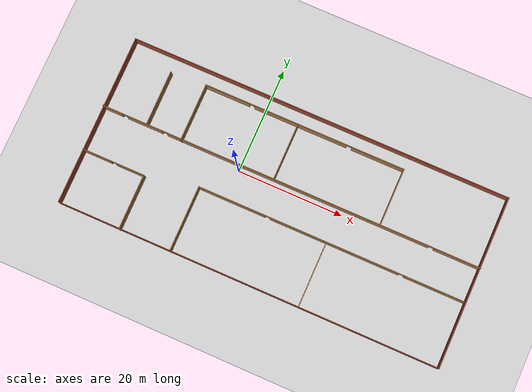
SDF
<sdf version="1.7">
 <world name="default">
  <light name="sun" type="directional">
   <pose>0 0 10 0 -0 0</pose>
   <diffuse>0.8 0.8 0.8 1</diffuse>
   <specular>0.2 0.2 0.2 1</specular>
   <attenuation>
    <range>1000</range>
    <constant>0.9</constant>
    <linear>0.01</linear>
    <quadratic>0.001</quadratic>
   </attenuation>
   <direction>-0.5 0.1 -0.9</direction>
   <spot><inner_angle>0</inner_angle><outer_angle>0</outer_angle><falloff>0</falloff></spot>
  </light>
  <model name="ground_plane">
   <static>1</static>
   <link name="link">
    <collision name="collision">
     <geometry><plane><normal>0 0 1</normal><size>100 100</size></plane></geometry>
     <surface>
      <contact><collide_bitmask>65535</collide_bitmask></contact>
      <friction><ode><mu>100</mu><mu2>50</mu2></ode></friction>
     </surface>
    </collision>
    <visual name="visual">
     <cast_shadows>0</cast_shadows>
     <geometry><plane><normal>0 0 1</normal><size>100 100</size></plane></geometry>
     <material>
      <script><uri>file://media/materials/scripts/gazebo.material</uri><name>Gazebo/Grey</name></script>
     </material>
    </visual>
   </link>
  </model>
  <gravity>0 0 -9.8</gravity>
  <magnetic_field>6e-06 2.3e-05 -4.2e-05</magnetic_field>
  <atmosphere type="adiabatic"/>
  <physics type="ode">
   <max_step_size>0.001</max_step_size>
   <real_time_factor>1</real_time_factor>
   <real_time_update_rate>1000</real_time_update_rate>
  </physics>
  <scene><ambient>0.4 0.4 0.4 1</ambient><background>0.7 0.7 0.7 1</background><shadows>1</shadows></scene>
  <spherical_coordinates>
   <surface_model>EARTH_WGS84</surface_model>
   <latitude_deg>0</latitude_deg>
   <longitude_deg>0</longitude_deg>
   <elevation>0</elevation>
   <heading_deg>0</heading_deg>
  </spherical_coordinates>
  <model name="perfect2.world">
   <pose>9.56653 -1.84375 0 0 -0 0</pose>
   <link name="Wall_10">
    <collision name="Wall_10_Collision">
     <geometry><box><size>12.5 0.15 2.5</size></box></geometry>
     <pose>0 0 1.25 0 -0 0</pose>
    </collision>
    <visual name="Wall_10_Visual">
     <pose>0 0 1.25 0 -0 0</pose>
     <geometry><box><size>12.5 0.15 2.5</size></box></geometry>
     <material>
      <script><uri>file://media/materials/scripts/gazebo.material</uri><name>Gazebo/Wood</name></script>
      <ambient>1 1 1 1</ambient>
     </material>
     <meta><layer>0</layer></meta>
    </visual>
    <pose>-14.6187 -9.99234 0 0 -0 1.5708</pose>
   </link>
   <link name="Wall_11">
    <pose>10.6813 -3.81734 0 0 -0 0</pose>
    <visual name="Wall_11_Visual_0">
     <pose>-18.9545 0 1.25 0 -0 0</pose>
     <geometry><box><size>12.8411 0.15 2.5</size></box></geometry>
     <material>
      <script><uri>file://media/materials/scripts/gazebo.material</uri><name>Gazebo/Wood</name></script>
      <ambient>1 1 1 1</ambient>
     </material>
     <meta><layer>0</layer></meta>
    </visual>
    <collision name="Wall_11_Collision_0">
     <geometry><box><size>12.8411 0.15 2.5</size></box></geometry>
     <pose>-18.9545 0 1.25 0 -0 0</pose>
    </collision>
    <visual name="Wall_11_Visual_1">
     <pose>0.721136 0 1.25 0 -0 0</pose>
     <geometry><box><size>24.7101 0.15 2.5</size></box></geometry>
     <material>
      <script><uri>file://media/materials/scripts/gazebo.material</uri><name>Gazebo/Wood</name></script>
      <ambient>1 1 1 1</ambient>
     </material>
     <meta><layer>0</layer></meta>
    </visual>
    <collision name="Wall_11_Collision_1">
     <geometry><box><size>24.7101 0.15 2.5</size></box></geometry>
     <pose>0.721136 0 1.25 0 -0 0</pose>
    </collision>
    <visual name="Wall_11_Visual_2">
     <pose>19.6756 0 1.25 0 -0 0</pose>
     <geometry><box><size>11.3988 0.15 2.5</size></box></geometry>
     <material>
      <script><uri>file://media/materials/scripts/gazebo.material</uri><name>Gazebo/Wood</name></script>
      <ambient>1 1 1 1</ambient>
     </material>
     <meta><layer>0</layer></meta>
    </visual>
    <collision name="Wall_11_Collision_2">
     <geometry><box><size>11.3988 0.15 2.5</size></box></geometry>
     <pose>19.6756 0 1.25 0 -0 0</pose>
    </collision>
    <visual name="Wall_11_Visual_3">
     <pose>-12.0839 0 2.25 0 -0 0</pose>
     <geometry><box><size>0.9 0.15 0.5</size></box></geometry>
     <material>
      <script><uri>file://media/materials/scripts/gazebo.material</uri><name>Gazebo/Wood</name></script>
      <ambient>1 1 1 1</ambient>
     </material>
     <meta><layer>0</layer></meta>
    </visual>
    <collision name="Wall_11_Collision_3">
     <geometry><box><size>0.9 0.15 0.5</size></box></geometry>
     <pose>-12.0839 0 2.25 0 -0 0</pose>
    </collision>
    <visual name="Wall_11_Visual_4">
     <pose>13.5262 0 2.25 0 -0 0</pose>
     <geometry><box><size>0.9 0.15 0.5</size></box></geometry>
     <material>
      <script><uri>file://media/materials/scripts/gazebo.material</uri><name>Gazebo/Wood</name></script>
      <ambient>1 1 1 1</ambient>
     </material>
     <meta><layer>0</layer></meta>
    </visual>
    <collision name="Wall_11_Collision_4">
     <geometry><box><size>0.9 0.15 0.5</size></box></geometry>
     <pose>13.5262 0 2.25 0 -0 0</pose>
    </collision>
   </link>
   <link name="Wall_15">
    <collision name="Wall_15_Collision">
     <geometry><box><size>12.25 0.15 2.5</size></box></geometry>
     <pose>0 0 1.25 0 -0 0</pose>
    </collision>
    <visual name="Wall_15_Visual">
     <pose>0 0 1.25 0 -0 0</pose>
     <geometry><box><size>12.25 0.15 2.5</size></box></geometry>
     <material>
      <script><uri>file://media/materials/scripts/gazebo.material</uri><name>Gazebo/Wood</name></script>
      <ambient>1 1 1 1</ambient>
     </material>
     <meta><layer>0</layer></meta>
    </visual>
    <pose>9.85454 -9.99968 0 0 -0 1.5708</pose>
   </link>
   <link name="Wall_18">
    <pose>-1e-06 2.73577 0 0 -0 0</pose>
    <visual name="Wall_18_Visual_0">
     <pose>-34.4518 0 1.25 0 -0 0</pose>
     <geometry><box><size>3.84645 0.15 2.5</size></box></geometry>
     <material>
      <script><uri>file://media/materials/scripts/gazebo.material</uri><name>Gazebo/Wood</name></script>
      <ambient>1 1 1 1</ambient>
     </material>
     <meta><layer>0</layer></meta>
    </visual>
    <collision name="Wall_18_Collision_0">
     <geometry><box><size>3.84645 0.15 2.5</size></box></geometry>
     <pose>-34.4518 0 1.25 0 -0 0</pose>
    </collision>
    <visual name="Wall_18_Visual_1">
     <pose>-28.1737 0 1.25 0 -0 0</pose>
     <geometry><box><size>6.90969 0.15 2.5</size></box></geometry>
     <material>
      <script><uri>file://media/materials/scripts/gazebo.material</uri><name>Gazebo/Wood</name></script>
      <ambient>1 1 1 1</ambient>
     </material>
     <meta><layer>0</layer></meta>
    </visual>
    <collision name="Wall_18_Collision_1">
     <geometry><box><size>6.90969 0.15 2.5</size></box></geometry>
     <pose>-28.1737 0 1.25 0 -0 0</pose>
    </collision>
    <visual name="Wall_18_Visual_2">
     <pose>1.44681 0 1.25 0 -0 0</pose>
     <geometry><box><size>50.5314 0.15 2.5</size></box></geometry>
     <material>
      <script><uri>file://media/materials/scripts/gazebo.material</uri><name>Gazebo/Wood</name></script>
      <ambient>1 1 1 1</ambient>
     </material>
     <meta><layer>0</layer></meta>
    </visual>
    <collision name="Wall_18_Collision_2">
     <geometry><box><size>50.5314 0.15 2.5</size></box></geometry>
     <pose>1.44681 0 1.25 0 -0 0</pose>
    </collision>
    <visual name="Wall_18_Visual_3">
     <pose>31.9937 0 1.25 0 -0 0</pose>
     <geometry><box><size>8.76251 0.15 2.5</size></box></geometry>
     <material>
      <script><uri>file://media/materials/scripts/gazebo.material</uri><name>Gazebo/Wood</name></script>
      <ambient>1 1 1 1</ambient>
     </material>
     <meta><layer>0</layer></meta>
    </visual>
    <collision name="Wall_18_Collision_3">
     <geometry><box><size>8.76251 0.15 2.5</size></box></geometry>
     <pose>31.9937 0 1.25 0 -0 0</pose>
    </collision>
    <visual name="Wall_18_Visual_4">
     <pose>-32.0785 0 2.25 0 -0 0</pose>
     <geometry><box><size>0.9 0.15 0.5</size></box></geometry>
     <material>
      <script><uri>file://media/materials/scripts/gazebo.material</uri><name>Gazebo/Wood</name></script>
      <ambient>1 1 1 1</ambient>
     </material>
     <meta><layer>0</layer></meta>
    </visual>
    <collision name="Wall_18_Collision_4">
     <geometry><box><size>0.9 0.15 0.5</size></box></geometry>
     <pose>-32.0785 0 2.25 0 -0 0</pose>
    </collision>
    <visual name="Wall_18_Visual_5">
     <pose>-24.2689 0 2.25 0 -0 0</pose>
     <geometry><box><size>0.9 0.15 0.5</size></box></geometry>
     <material>
      <script><uri>file://media/materials/scripts/gazebo.material</uri><name>Gazebo/Wood</name></script>
      <ambient>1 1 1 1</ambient>
     </material>
     <meta><layer>0</layer></meta>
    </visual>
    <collision name="Wall_18_Collision_5">
     <geometry><box><size>0.9 0.15 0.5</size></box></geometry>
     <pose>-24.2689 0 2.25 0 -0 0</pose>
    </collision>
    <visual name="Wall_18_Visual_6">
     <pose>27.1625 0 2.25 0 -0 0</pose>
     <geometry><box><size>0.9 0.15 0.5</size></box></geometry>
     <material>
      <script><uri>file://media/materials/scripts/gazebo.material</uri><name>Gazebo/Wood</name></script>
      <ambient>1 1 1 1</ambient>
     </material>
     <meta><layer>0</layer></meta>
    </visual>
    <collision name="Wall_18_Collision_6">
     <geometry><box><size>0.9 0.15 0.5</size></box></geometry>
     <pose>27.1625 0 2.25 0 -0 0</pose>
    </collision>
   </link>
   <link name="Wall_2">
    <collision name="Wall_2_Collision">
     <geometry><box><size>32.5 0.15 2.5</size></box></geometry>
     <pose>0 0 1.25 0 -0 0</pose>
    </collision>
    <visual name="Wall_2_Visual">
     <pose>0 0 1.25 0 -0 0</pose>
     <geometry><box><size>32.5 0.15 2.5</size></box></geometry>
     <material>
      <script><uri>file://media/materials/scripts/gazebo.material</uri><name>Gazebo/Bricks</name></script>
      <ambient>1 1 1 1</ambient>
     </material>
     <meta><layer>0</layer></meta>
    </visual>
    <pose>-36.1367 0.026166 0 0 -0 -1.5708</pose>
   </link>
   <link name="Wall_20">
    <collision name="Wall_20_Collision">
     <geometry><box><size>10.5 0.15 2.5</size></box></geometry>
     <pose>0 0 1.25 0 -0 0</pose>
    </collision>
    <visual name="Wall_20_Visual">
     <pose>0 0 1.25 0 -0 0</pose>
     <geometry><box><size>10.5 0.15 2.5</size></box></geometry>
     <material>
      <script><uri>file://media/materials/scripts/gazebo.material</uri><name>Gazebo/Wood</name></script>
      <ambient>1 1 1 1</ambient>
     </material>
     <meta><layer>0</layer></meta>
    </visual>
    <pose>-27.7867 7.98113 0 0 -0 1.5708</pose>
   </link>
   <link name="Wall_22">
    <collision name="Wall_22_Collision">
     <geometry><box><size>11 0.15 2.5</size></box></geometry>
     <pose>0 0 1.25 0 -0 0</pose>
    </collision>
    <visual name="Wall_22_Visual">
     <pose>0 0 1.25 0 -0 0</pose>
     <geometry><box><size>11 0.15 2.5</size></box></geometry>
     <material>
      <script><uri>file://media/materials/scripts/gazebo.material</uri><name>Gazebo/Wood</name></script>
      <ambient>1 1 1 1</ambient>
     </material>
     <meta><layer>0</layer></meta>
    </visual>
    <pose>-21.0324 8.09042 0 0 -0 1.5708</pose>
   </link>
   <link name="Wall_23">
    <pose>-1.85742 13.5154 0 0 -0 0</pose>
    <visual name="Wall_23_Visual_0">
     <pose>-14.9346 0 1.25 0 -0 0</pose>
     <geometry><box><size>8.63076 0.15 2.5</size></box></geometry>
     <material>
      <script><uri>file://media/materials/scripts/gazebo.material</uri><name>Gazebo/Wood</name></script>
      <ambient>1 1 1 1</ambient>
     </material>
     <meta><layer>0</layer></meta>
    </visual>
    <collision name="Wall_23_Collision_0">
     <geometry><box><size>8.63076 0.15 2.5</size></box></geometry>
     <pose>-14.9346 0 1.25 0 -0 0</pose>
    </collision>
    <visual name="Wall_23_Visual_1">
     <pose>-0.741328 0 1.25 0 -0 0</pose>
     <geometry><box><size>17.9558 0.15 2.5</size></box></geometry>
     <material>
      <script><uri>file://media/materials/scripts/gazebo.material</uri><name>Gazebo/Wood</name></script>
      <ambient>1 1 1 1</ambient>
     </material>
     <meta><layer>0</layer></meta>
    </visual>
    <collision name="Wall_23_Collision_1">
     <geometry><box><size>17.9558 0.15 2.5</size></box></geometry>
     <pose>-0.741328 0 1.25 0 -0 0</pose>
    </collision>
    <visual name="Wall_23_Visual_2">
     <pose>14.1933 0 1.25 0 -0 0</pose>
     <geometry><box><size>10.1134 0.15 2.5</size></box></geometry>
     <material>
      <script><uri>file://media/materials/scripts/gazebo.material</uri><name>Gazebo/Wood</name></script>
      <ambient>1 1 1 1</ambient>
     </material>
     <meta><layer>0</layer></meta>
    </visual>
    <collision name="Wall_23_Collision_2">
     <geometry><box><size>10.1134 0.15 2.5</size></box></geometry>
     <pose>14.1933 0 1.25 0 -0 0</pose>
    </collision>
    <visual name="Wall_23_Visual_3">
     <pose>-10.1692 0 2.25 0 -0 0</pose>
     <geometry><box><size>0.9 0.15 0.5</size></box></geometry>
     <material>
      <script><uri>file://media/materials/scripts/gazebo.material</uri><name>Gazebo/Wood</name></script>
      <ambient>1 1 1 1</ambient>
     </material>
     <meta><layer>0</layer></meta>
    </visual>
    <collision name="Wall_23_Collision_3">
     <geometry><box><size>0.9 0.15 0.5</size></box></geometry>
     <pose>-10.1692 0 2.25 0 -0 0</pose>
    </collision>
    <visual name="Wall_23_Visual_4">
     <pose>8.68658 0 2.25 0 -0 0</pose>
     <geometry><box><size>0.9 0.15 0.5</size></box></geometry>
     <material>
      <script><uri>file://media/materials/scripts/gazebo.material</uri><name>Gazebo/Wood</name></script>
      <ambient>1 1 1 1</ambient>
     </material>
     <meta><layer>0</layer></meta>
    </visual>
    <collision name="Wall_23_Collision_4">
     <geometry><box><size>0.9 0.15 0.5</size></box></geometry>
     <pose>8.68658 0 2.25 0 -0 0</pose>
    </collision>
   </link>
   <link name="Wall_24">
    <collision name="Wall_24_Collision">
     <geometry><box><size>10.75 0.15 2.5</size></box></geometry>
     <pose>0 0 1.25 0 -0 0</pose>
    </collision>
    <visual name="Wall_24_Visual">
     <pose>0 0 1.25 0 -0 0</pose>
     <geometry><box><size>10.75 0.15 2.5</size></box></geometry>
     <material>
      <script><uri>file://media/materials/scripts/gazebo.material</uri><name>Gazebo/Wood</name></script>
      <ambient>1 1 1 1</ambient>
     </material>
     <meta><layer>0</layer></meta>
    </visual>
    <pose>17.3176 8.21542 0 0 -0 -1.5708</pose>
   </link>
   <link name="Wall_26">
    <collision name="Wall_26_Collision">
     <geometry><box><size>10.75 0.15 2.5</size></box></geometry>
     <pose>0 0 1.25 0 -0 0</pose>
    </collision>
    <visual name="Wall_26_Visual">
     <pose>0 0 1.25 0 -0 0</pose>
     <geometry><box><size>10.75 0.15 2.5</size></box></geometry>
     <material>
      <script><uri>file://media/materials/scripts/gazebo.material</uri><name>Gazebo/Wood</name></script>
      <ambient>1 1 1 1</ambient>
     </material>
     <meta><layer>0</layer></meta>
    </visual>
    <pose>-3.09125 8.27083 0 0 -0 -1.5708</pose>
   </link>
   <link name="Wall_27">
    <collision name="Wall_27_Collision">
     <geometry><box><size>0.25 0.15 2.5</size></box></geometry>
     <pose>0 0 1.25 0 -0 0</pose>
    </collision>
    <visual name="Wall_27_Visual">
     <pose>0 0 1.25 0 -0 0</pose>
     <geometry><box><size>0.25 0.15 2.5</size></box></geometry>
     <material>
      <script><uri>file://media/materials/scripts/gazebo.material</uri><name>Gazebo/Grey</name></script>
      <ambient>1 1 1 1</ambient>
     </material>
     <meta><layer>0</layer></meta>
    </visual>
    <pose>-3.10419 2.92254 0 0 -0 -1.8326</pose>
   </link>
   <link name="Wall_3">
    <collision name="Wall_3_Collision">
     <geometry><box><size>72.5 0.15 2.5</size></box></geometry>
     <pose>0 0 1.25 0 -0 0</pose>
    </collision>
    <visual name="Wall_3_Visual">
     <pose>0 0 1.25 0 -0 0</pose>
     <geometry><box><size>72.5 0.15 2.5</size></box></geometry>
     <material>
      <script><uri>file://media/materials/scripts/gazebo.material</uri><name>Gazebo/Bricks</name></script>
      <ambient>1 1 1 1</ambient>
     </material>
     <meta><layer>0</layer></meta>
    </visual>
    <pose>0.038316 -16.1488 0 0 -0 0</pose>
   </link>
   <link name="Wall_4">
    <collision name="Wall_4_Collision">
     <geometry><box><size>32.5 0.15 2.5</size></box></geometry>
     <pose>0 0 1.25 0 -0 0</pose>
    </collision>
    <visual name="Wall_4_Visual">
     <pose>0 0 1.25 0 -0 0</pose>
     <geometry><box><size>32.5 0.15 2.5</size></box></geometry>
     <material>
      <script><uri>file://media/materials/scripts/gazebo.material</uri><name>Gazebo/Bricks</name></script>
      <ambient>1 1 1 1</ambient>
     </material>
     <meta><layer>0</layer></meta>
    </visual>
    <pose>36.2133 0.026166 0 0 -0 1.5708</pose>
   </link>
   <link name="Wall_5">
    <collision name="Wall_5_Collision">
     <geometry><box><size>72.5 0.15 2.5</size></box></geometry>
     <pose>0 0 1.25 0 -0 0</pose>
    </collision>
    <visual name="Wall_5_Visual">
     <pose>0 0 1.25 0 -0 0</pose>
     <geometry><box><size>72.5 0.15 2.5</size></box></geometry>
     <material>
      <script><uri>file://media/materials/scripts/gazebo.material</uri><name>Gazebo/Bricks</name></script>
      <ambient>1 1 1 1</ambient>
     </material>
     <meta><layer>0</layer></meta>
    </visual>
    <pose>0.038316 16.2012 0 0 -0 3.14159</pose>
   </link>
   <link name="Wall_7">
    <pose>-30.3047 -5.85117 0 0 -0 0</pose>
    <visual name="Wall_7_Visual_0">
     <pose>-3.20997 0 1.25 0 -0 0</pose>
     <geometry><box><size>5.58006 0.15 2.5</size></box></geometry>
     <material>
      <script><uri>file://media/materials/scripts/gazebo.material</uri><name>Gazebo/Wood</name></script>
      <ambient>1 1 1 1</ambient>
     </material>
     <meta><layer>0</layer></meta>
    </visual>
    <collision name="Wall_7_Collision_0">
     <geometry><box><size>5.58006 0.15 2.5</size></box></geometry>
     <pose>-3.20997 0 1.25 0 -0 0</pose>
    </collision>
    <visual name="Wall_7_Visual_1">
     <pose>3.24003 0 1.25 0 -0 0</pose>
     <geometry><box><size>5.51994 0.15 2.5</size></box></geometry>
     <material>
      <script><uri>file://media/materials/scripts/gazebo.material</uri><name>Gazebo/Wood</name></script>
      <ambient>1 1 1 1</ambient>
     </material>
     <meta><layer>0</layer></meta>
    </visual>
    <collision name="Wall_7_Collision_1">
     <geometry><box><size>5.51994 0.15 2.5</size></box></geometry>
     <pose>3.24003 0 1.25 0 -0 0</pose>
    </collision>
    <visual name="Wall_7_Visual_2">
     <pose>0.03006 0 2.25 0 -0 0</pose>
     <geometry><box><size>0.9 0.15 0.5</size></box></geometry>
     <material>
      <script><uri>file://media/materials/scripts/gazebo.material</uri><name>Gazebo/Wood</name></script>
      <ambient>1 1 1 1</ambient>
     </material>
     <meta><layer>0</layer></meta>
    </visual>
    <collision name="Wall_7_Collision_2">
     <geometry><box><size>0.9 0.15 0.5</size></box></geometry>
     <pose>0.03006 0 2.25 0 -0 0</pose>
    </collision>
   </link>
   <link name="Wall_8">
    <collision name="Wall_8_Collision">
     <geometry><box><size>10.5 0.15 2.5</size></box></geometry>
     <pose>0 0 1.25 0 -0 0</pose>
    </collision>
    <visual name="Wall_8_Visual">
     <pose>0 0 1.25 0 -0 0</pose>
     <geometry><box><size>10.5 0.15 2.5</size></box></geometry>
     <material>
      <script><uri>file://media/materials/scripts/gazebo.material</uri><name>Gazebo/Wood</name></script>
      <ambient>1 1 1 1</ambient>
     </material>
     <meta><layer>0</layer></meta>
    </visual>
    <pose>-24.3797 -11.0262 0 0 -0 -1.5708</pose>
   </link>
   <static>1</static>
  </model>
 </world>
</sdf>
